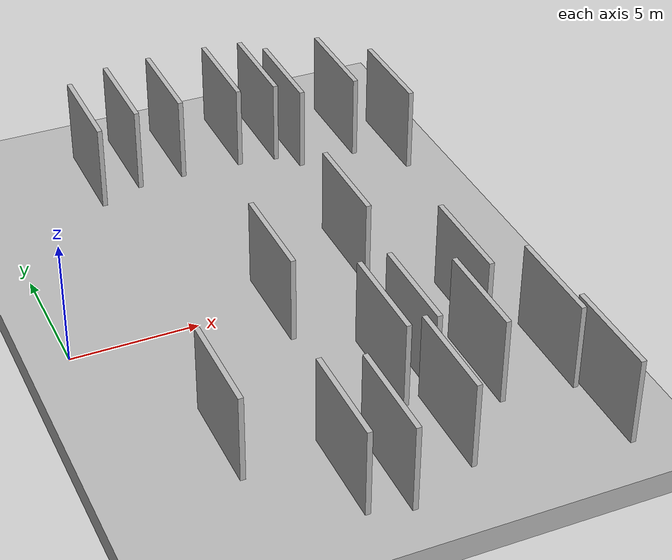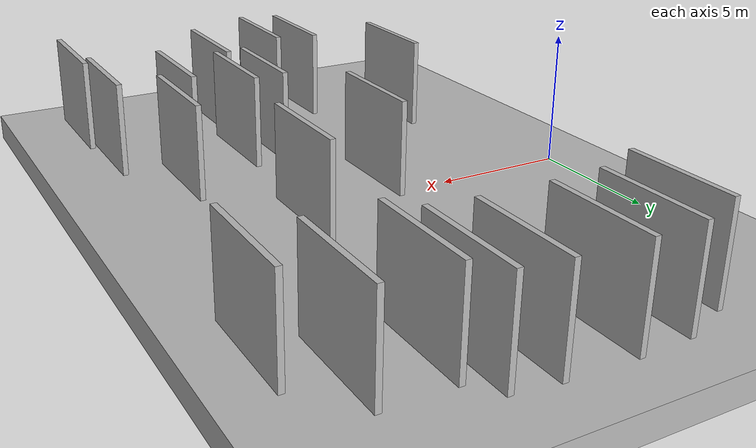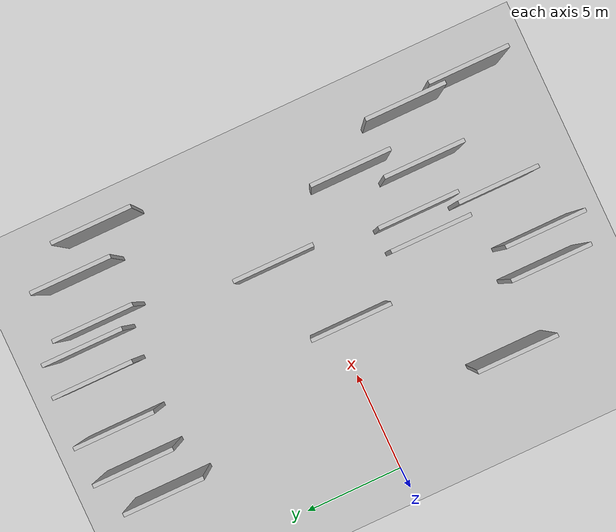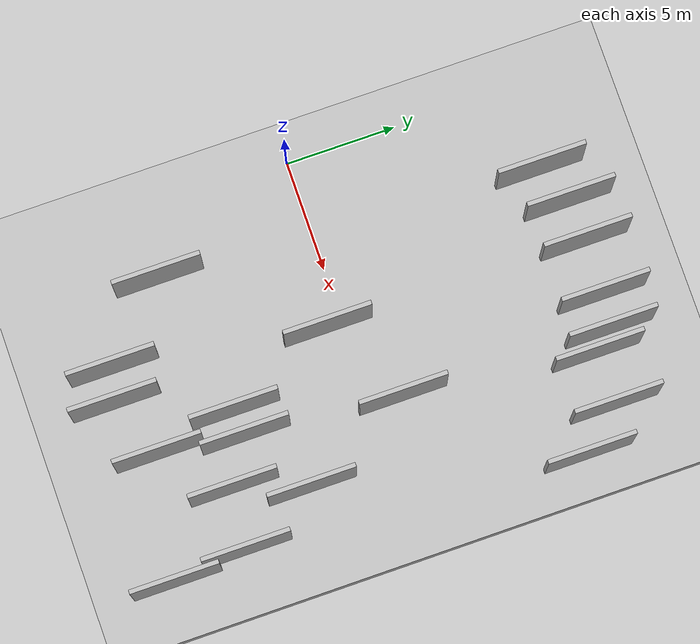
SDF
<?xml version="1.0" encoding="utf-8"?>

<sdf version="1.6">

   <world name="default">

      <gui fullscreen="0">

         <camera name="user_camera">

            <pose>-15 0 4.57585 0 0 0</pose>

            <view_controller>orbit</view_controller>

         </camera>

      </gui>

      <scene>

         <sky>

           <clouds>

             <speed>12</speed>

           </clouds>

         </sky>

         <ambient>0.4 0.4 0.4 1</ambient>

         <background>0.7 0.7 0.7 1</background>

         <shadows>1</shadows>

      </scene>

      <gravity>0 0 -9.8066</gravity>

      <magnetic_field>6e-06 2.3e-05 -4.2e-05</magnetic_field>

      <physics default="0" name="default_physics" type="ode">

         <ode>

            <solver>

               <type>quick</type>

               <iters>10</iters>

               <sor>1.0</sor>

               <use_dynamic_moi_rescaling>0</use_dynamic_moi_rescaling>

            </solver>

            <constraints>

               <cfm>0</cfm>

               <erp>0.2</erp>

               <contact_max_correcting_vel>100</contact_max_correcting_vel>

               <contact_surface_layer>0.001</contact_surface_layer>

            </constraints>

         </ode>

         <max_step_size>0.004</max_step_size>

         <real_time_factor>1</real_time_factor>

         <real_time_update_rate>250</real_time_update_rate>

      </physics>

      <light name="sun" type="directional">

         <cast_shadows>1</cast_shadows>

         <pose>0 0 10 0 0 0</pose>

         <diffuse>0.8 0.8 0.8 1</diffuse>

         <specular>0.2 0.2 0.2 1</specular>

         <attenuation>

            <range>1000</range>

            <constant>0.9</constant>

            <linear>0.01</linear>

            <quadratic>0.001</quadratic>

         </attenuation>

         <direction>-0.5 0.1 -0.9</direction>

      </light>

      <include>

         <name>ground_plane_1</name>

         <uri>model://HANNAS_ground_plane</uri>

         <pose>0 0 0  0 0 0</pose>

      </include>

      <include>

         <name>ground_plane_2</name>

         <uri>model://HANNAS_ground_plane</uri>

         <pose>100 0 0  0 0 0</pose>

      </include>

      <model name="HANNAS_wall_1">

         <static>1</static>

         <pose frame="">6.3063 -10.0664 0.0 0.000000 0.000000 1.570796</pose>

         <link name="link">

            <pose frame="">0 0 2.00 0 0 0</pose>

            <collision name="collision">

               <geometry>

                  <box>

                     <size>4.00 0.2 4.00</size>

                  </box>

               </geometry>

               <max_contacts>10</max_contacts>

               <surface>

                  <contact>

                     <ode/>

                  </contact>

                  <bounce/>

                  <friction>

                     <torsional>

                        <ode/>

                     </torsional>

                     <ode/>

                  </friction>

               </surface>

            </collision>

            <visual name="visual">

               <cast_shadows>0</cast_shadows>

               <geometry>

                  <box>

                     <size>4.00 0.2 4.00</size>

                  </box>

               </geometry>

               <material>

                  <script>

                     <uri>model://HANNAS_wall/materials/scripts</uri>

                     <uri>model://HANNAS_wall/materials/textures</uri>

                     <name>vrc/HANNAS_wall</name>

                  </script>

               </material>

            </visual>

            <self_collide>0</self_collide>

            <enable_wind>0</enable_wind>

            <kinematic>0</kinematic>

         </link>

      </model>

      <model name="HANNAS_wall_2">

         <static>1</static>

         <pose frame="">4.1061 10.2583 0.0 0.000000 0.000000 1.570796</pose>

         <link name="link">

            <pose frame="">0 0 2.00 0 0 0</pose>

            <collision name="collision">

               <geometry>

                  <box>

                     <size>4.00 0.2 4.00</size>

                  </box>

               </geometry>

               <max_contacts>10</max_contacts>

               <surface>

                  <contact>

                     <ode/>

                  </contact>

                  <bounce/>

                  <friction>

                     <torsional>

                        <ode/>

                     </torsional>

                     <ode/>

                  </friction>

               </surface>

            </collision>

            <visual name="visual">

               <cast_shadows>0</cast_shadows>

               <geometry>

                  <box>

                     <size>4.00 0.2 4.00</size>

                  </box>

               </geometry>

               <material>

                  <script>

                     <uri>model://HANNAS_wall/materials/scripts</uri>

                     <uri>model://HANNAS_wall/materials/textures</uri>

                     <name>vrc/HANNAS_wall</name>

                  </script>

               </material>

            </visual>

            <self_collide>0</self_collide>

            <enable_wind>0</enable_wind>

            <kinematic>0</kinematic>

         </link>

      </model>

      <model name="HANNAS_wall_3">

         <static>1</static>

         <pose frame="">5.8660 10.9579 0.0 0.000000 0.000000 1.570796</pose>

         <link name="link">

            <pose frame="">0 0 2.00 0 0 0</pose>

            <collision name="collision">

               <geometry>

                  <box>

                     <size>4.00 0.2 4.00</size>

                  </box>

               </geometry>

               <max_contacts>10</max_contacts>

               <surface>

                  <contact>

                     <ode/>

                  </contact>

                  <bounce/>

                  <friction>

                     <torsional>

                        <ode/>

                     </torsional>

                     <ode/>

                  </friction>

               </surface>

            </collision>

            <visual name="visual">

               <cast_shadows>0</cast_shadows>

               <geometry>

                  <box>

                     <size>4.00 0.2 4.00</size>

                  </box>

               </geometry>

               <material>

                  <script>

                     <uri>model://HANNAS_wall/materials/scripts</uri>

                     <uri>model://HANNAS_wall/materials/textures</uri>

                     <name>vrc/HANNAS_wall</name>

                  </script>

               </material>

            </visual>

            <self_collide>0</self_collide>

            <enable_wind>0</enable_wind>

            <kinematic>0</kinematic>

         </link>

      </model>

      <model name="HANNAS_wall_4">

         <static>1</static>

         <pose frame="">7.7564 11.0392 0.0 0.000000 0.000000 1.570796</pose>

         <link name="link">

            <pose frame="">0 0 2.00 0 0 0</pose>

            <collision name="collision">

               <geometry>

                  <box>

                     <size>4.00 0.2 4.00</size>

                  </box>

               </geometry>

               <max_contacts>10</max_contacts>

               <surface>

                  <contact>

                     <ode/>

                  </contact>

                  <bounce/>

                  <friction>

                     <torsional>

                        <ode/>

                     </torsional>

                     <ode/>

                  </friction>

               </surface>

            </collision>

            <visual name="visual">

               <cast_shadows>0</cast_shadows>

               <geometry>

                  <box>

                     <size>4.00 0.2 4.00</size>

                  </box>

               </geometry>

               <material>

                  <script>

                     <uri>model://HANNAS_wall/materials/scripts</uri>

                     <uri>model://HANNAS_wall/materials/textures</uri>

                     <name>vrc/HANNAS_wall</name>

                  </script>

               </material>

            </visual>

            <self_collide>0</self_collide>

            <enable_wind>0</enable_wind>

            <kinematic>0</kinematic>

         </link>

      </model>

      <model name="HANNAS_wall_5">

         <static>1</static>

         <pose frame="">7.8040 -10.4779 0.0 0.000000 0.000000 1.570796</pose>

         <link name="link">

            <pose frame="">0 0 2.00 0 0 0</pose>

            <collision name="collision">

               <geometry>

                  <box>

                     <size>4.00 0.2 4.00</size>

                  </box>

               </geometry>

               <max_contacts>10</max_contacts>

               <surface>

                  <contact>

                     <ode/>

                  </contact>

                  <bounce/>

                  <friction>

                     <torsional>

                        <ode/>

                     </torsional>

                     <ode/>

                  </friction>

               </surface>

            </collision>

            <visual name="visual">

               <cast_shadows>0</cast_shadows>

               <geometry>

                  <box>

                     <size>4.00 0.2 4.00</size>

                  </box>

               </geometry>

               <material>

                  <script>

                     <uri>model://HANNAS_wall/materials/scripts</uri>

                     <uri>model://HANNAS_wall/materials/textures</uri>

                     <name>vrc/HANNAS_wall</name>

                  </script>

               </material>

            </visual>

            <self_collide>0</self_collide>

            <enable_wind>0</enable_wind>

            <kinematic>0</kinematic>

         </link>

      </model>

      <model name="HANNAS_wall_6">

         <static>1</static>

         <pose frame="">11.5746 1.3347 0.0 0.000000 0.000000 1.570796</pose>

         <link name="link">

            <pose frame="">0 0 2.00 0 0 0</pose>

            <collision name="collision">

               <geometry>

                  <box>

                     <size>4.00 0.2 4.00</size>

                  </box>

               </geometry>

               <max_contacts>10</max_contacts>

               <surface>

                  <contact>

                     <ode/>

                  </contact>

                  <bounce/>

                  <friction>

                     <torsional>

                        <ode/>

                     </torsional>

                     <ode/>

                  </friction>

               </surface>

            </collision>

            <visual name="visual">

               <cast_shadows>0</cast_shadows>

               <geometry>

                  <box>

                     <size>4.00 0.2 4.00</size>

                  </box>

               </geometry>

               <material>

                  <script>

                     <uri>model://HANNAS_wall/materials/scripts</uri>

                     <uri>model://HANNAS_wall/materials/textures</uri>

                     <name>vrc/HANNAS_wall</name>

                  </script>

               </material>

            </visual>

            <self_collide>0</self_collide>

            <enable_wind>0</enable_wind>

            <kinematic>0</kinematic>

         </link>

      </model>

      <model name="HANNAS_wall_7">

         <static>1</static>

         <pose frame="">15.6903 -7.1706 0.0 0.000000 0.000000 1.570796</pose>

         <link name="link">

            <pose frame="">0 0 2.00 0 0 0</pose>

            <collision name="collision">

               <geometry>

                  <box>

                     <size>4.00 0.2 4.00</size>

                  </box>

               </geometry>

               <max_contacts>10</max_contacts>

               <surface>

                  <contact>

                     <ode/>

                  </contact>

                  <bounce/>

                  <friction>

                     <torsional>

                        <ode/>

                     </torsional>

                     <ode/>

                  </friction>

               </surface>

            </collision>

            <visual name="visual">

               <cast_shadows>0</cast_shadows>

               <geometry>

                  <box>

                     <size>4.00 0.2 4.00</size>

                  </box>

               </geometry>

               <material>

                  <script>

                     <uri>model://HANNAS_wall/materials/scripts</uri>

                     <uri>model://HANNAS_wall/materials/textures</uri>

                     <name>vrc/HANNAS_wall</name>

                  </script>

               </material>

            </visual>

            <self_collide>0</self_collide>

            <enable_wind>0</enable_wind>

            <kinematic>0</kinematic>

         </link>

      </model>

      <model name="HANNAS_wall_8">

         <static>1</static>

         <pose frame="">14.0277 -3.6547 0.0 0.000000 0.000000 1.570796</pose>

         <link name="link">

            <pose frame="">0 0 2.00 0 0 0</pose>

            <collision name="collision">

               <geometry>

                  <box>

                     <size>4.00 0.2 4.00</size>

                  </box>

               </geometry>

               <max_contacts>10</max_contacts>

               <surface>

                  <contact>

                     <ode/>

                  </contact>

                  <bounce/>

                  <friction>

                     <torsional>

                        <ode/>

                     </torsional>

                     <ode/>

                  </friction>

               </surface>

            </collision>

            <visual name="visual">

               <cast_shadows>0</cast_shadows>

               <geometry>

                  <box>

                     <size>4.00 0.2 4.00</size>

                  </box>

               </geometry>

               <material>

                  <script>

                     <uri>model://HANNAS_wall/materials/scripts</uri>

                     <uri>model://HANNAS_wall/materials/textures</uri>

                     <name>vrc/HANNAS_wall</name>

                  </script>

               </material>

            </visual>

            <self_collide>0</self_collide>

            <enable_wind>0</enable_wind>

            <kinematic>0</kinematic>

         </link>

      </model>

      <model name="HANNAS_wall_9">

         <static>1</static>

         <pose frame="">16.6101 8.0653 0.0 0.000000 0.000000 1.570796</pose>

         <link name="link">

            <pose frame="">0 0 2.00 0 0 0</pose>

            <collision name="collision">

               <geometry>

                  <box>

                     <size>4.00 0.2 4.00</size>

                  </box>

               </geometry>

               <max_contacts>10</max_contacts>

               <surface>

                  <contact>

                     <ode/>

                  </contact>

                  <bounce/>

                  <friction>

                     <torsional>

                        <ode/>

                     </torsional>

                     <ode/>

                  </friction>

               </surface>

            </collision>

            <visual name="visual">

               <cast_shadows>0</cast_shadows>

               <geometry>

                  <box>

                     <size>4.00 0.2 4.00</size>

                  </box>

               </geometry>

               <material>

                  <script>

                     <uri>model://HANNAS_wall/materials/scripts</uri>

                     <uri>model://HANNAS_wall/materials/textures</uri>

                     <name>vrc/HANNAS_wall</name>

                  </script>

               </material>

            </visual>

            <self_collide>0</self_collide>

            <enable_wind>0</enable_wind>

            <kinematic>0</kinematic>

         </link>

      </model>

      <model name="HANNAS_wall_10">

         <static>1</static>

         <pose frame="">12.9653 -6.8424 0.0 0.000000 0.000000 1.570796</pose>

         <link name="link">

            <pose frame="">0 0 2.00 0 0 0</pose>

            <collision name="collision">

               <geometry>

                  <box>

                     <size>4.00 0.2 4.00</size>

                  </box>

               </geometry>

               <max_contacts>10</max_contacts>

               <surface>

                  <contact>

                     <ode/>

                  </contact>

                  <bounce/>

                  <friction>

                     <torsional>

                        <ode/>

                     </torsional>

                     <ode/>

                  </friction>

               </surface>

            </collision>

            <visual name="visual">

               <cast_shadows>0</cast_shadows>

               <geometry>

                  <box>

                     <size>4.00 0.2 4.00</size>

                  </box>

               </geometry>

               <material>

                  <script>

                     <uri>model://HANNAS_wall/materials/scripts</uri>

                     <uri>model://HANNAS_wall/materials/textures</uri>

                     <name>vrc/HANNAS_wall</name>

                  </script>

               </material>

            </visual>

            <self_collide>0</self_collide>

            <enable_wind>0</enable_wind>

            <kinematic>0</kinematic>

         </link>

      </model>

      <model name="HANNAS_wall_11">

         <static>1</static>

         <pose frame="">3.2163 -6.9590 0.0 0.000000 0.000000 1.570796</pose>

         <link name="link">

            <pose frame="">0 0 2.00 0 0 0</pose>

            <collision name="collision">

               <geometry>

                  <box>

                     <size>4.00 0.2 4.00</size>

                  </box>

               </geometry>

               <max_contacts>10</max_contacts>

               <surface>

                  <contact>

                     <ode/>

                  </contact>

                  <bounce/>

                  <friction>

                     <torsional>

                        <ode/>

                     </torsional>

                     <ode/>

                  </friction>

               </surface>

            </collision>

            <visual name="visual">

               <cast_shadows>0</cast_shadows>

               <geometry>

                  <box>

                     <size>4.00 0.2 4.00</size>

                  </box>

               </geometry>

               <material>

                  <script>

                     <uri>model://HANNAS_wall/materials/scripts</uri>

                     <uri>model://HANNAS_wall/materials/textures</uri>

                     <name>vrc/HANNAS_wall</name>

                  </script>

               </material>

            </visual>

            <self_collide>0</self_collide>

            <enable_wind>0</enable_wind>

            <kinematic>0</kinematic>

         </link>

      </model>

      <model name="HANNAS_wall_12">

         <static>1</static>

         <pose frame="">10.5106 -9.3970 0.0 0.000000 0.000000 1.570796</pose>

         <link name="link">

            <pose frame="">0 0 2.00 0 0 0</pose>

            <collision name="collision">

               <geometry>

                  <box>

                     <size>4.00 0.2 4.00</size>

                  </box>

               </geometry>

               <max_contacts>10</max_contacts>

               <surface>

                  <contact>

                     <ode/>

                  </contact>

                  <bounce/>

                  <friction>

                     <torsional>

                        <ode/>

                     </torsional>

                     <ode/>

                  </friction>

               </surface>

            </collision>

            <visual name="visual">

               <cast_shadows>0</cast_shadows>

               <geometry>

                  <box>

                     <size>4.00 0.2 4.00</size>

                  </box>

               </geometry>

               <material>

                  <script>

                     <uri>model://HANNAS_wall/materials/scripts</uri>

                     <uri>model://HANNAS_wall/materials/textures</uri>

                     <name>vrc/HANNAS_wall</name>

                  </script>

               </material>

            </visual>

            <self_collide>0</self_collide>

            <enable_wind>0</enable_wind>

            <kinematic>0</kinematic>

         </link>

      </model>

      <model name="HANNAS_wall_13">

         <static>1</static>

         <pose frame="">14.9527 9.8604 0.0 0.000000 0.000000 1.570796</pose>

         <link name="link">

            <pose frame="">0 0 2.00 0 0 0</pose>

            <collision name="collision">

               <geometry>

                  <box>

                     <size>4.00 0.2 4.00</size>

                  </box>

               </geometry>

               <max_contacts>10</max_contacts>

               <surface>

                  <contact>

                     <ode/>

                  </contact>

                  <bounce/>

                  <friction>

                     <torsional>

                        <ode/>

                     </torsional>

                     <ode/>

                  </friction>

               </surface>

            </collision>

            <visual name="visual">

               <cast_shadows>0</cast_shadows>

               <geometry>

                  <box>

                     <size>4.00 0.2 4.00</size>

                  </box>

               </geometry>

               <material>

                  <script>

                     <uri>model://HANNAS_wall/materials/scripts</uri>

                     <uri>model://HANNAS_wall/materials/textures</uri>

                     <name>vrc/HANNAS_wall</name>

                  </script>

               </material>

            </visual>

            <self_collide>0</self_collide>

            <enable_wind>0</enable_wind>

            <kinematic>0</kinematic>

         </link>

      </model>

      <model name="HANNAS_wall_14">

         <static>1</static>

         <pose frame="">7.6722 -0.7406 0.0 0.000000 0.000000 1.570796</pose>

         <link name="link">

            <pose frame="">0 0 2.00 0 0 0</pose>

            <collision name="collision">

               <geometry>

                  <box>

                     <size>4.00 0.2 4.00</size>

                  </box>

               </geometry>

               <max_contacts>10</max_contacts>

               <surface>

                  <contact>

                     <ode/>

                  </contact>

                  <bounce/>

                  <friction>

                     <torsional>

                        <ode/>

                     </torsional>

                     <ode/>

                  </friction>

               </surface>

            </collision>

            <visual name="visual">

               <cast_shadows>0</cast_shadows>

               <geometry>

                  <box>

                     <size>4.00 0.2 4.00</size>

                  </box>

               </geometry>

               <material>

                  <script>

                     <uri>model://HANNAS_wall/materials/scripts</uri>

                     <uri>model://HANNAS_wall/materials/textures</uri>

                     <name>vrc/HANNAS_wall</name>

                  </script>

               </material>

            </visual>

            <self_collide>0</self_collide>

            <enable_wind>0</enable_wind>

            <kinematic>0</kinematic>

         </link>

      </model>

      <model name="HANNAS_wall_15">

         <static>1</static>

         <pose frame="">9.7931 -5.7080 0.0 0.000000 0.000000 1.570796</pose>

         <link name="link">

            <pose frame="">0 0 2.00 0 0 0</pose>

            <collision name="collision">

               <geometry>

                  <box>

                     <size>4.00 0.2 4.00</size>

                  </box>

               </geometry>

               <max_contacts>10</max_contacts>

               <surface>

                  <contact>

                     <ode/>

                  </contact>

                  <bounce/>

                  <friction>

                     <torsional>

                        <ode/>

                     </torsional>

                     <ode/>

                  </friction>

               </surface>

            </collision>

            <visual name="visual">

               <cast_shadows>0</cast_shadows>

               <geometry>

                  <box>

                     <size>4.00 0.2 4.00</size>

                  </box>

               </geometry>

               <material>

                  <script>

                     <uri>model://HANNAS_wall/materials/scripts</uri>

                     <uri>model://HANNAS_wall/materials/textures</uri>

                     <name>vrc/HANNAS_wall</name>

                  </script>

               </material>

            </visual>

            <self_collide>0</self_collide>

            <enable_wind>0</enable_wind>

            <kinematic>0</kinematic>

         </link>

      </model>

      <model name="HANNAS_wall_16">

         <static>1</static>

         <pose frame="">12.5636 9.8685 0.0 0.000000 0.000000 1.570796</pose>

         <link name="link">

            <pose frame="">0 0 2.00 0 0 0</pose>

            <collision name="collision">

               <geometry>

                  <box>

                     <size>4.00 0.2 4.00</size>

                  </box>

               </geometry>

               <max_contacts>10</max_contacts>

               <surface>

                  <contact>

                     <ode/>

                  </contact>

                  <bounce/>

                  <friction>

                     <torsional>

                        <ode/>

                     </torsional>

                     <ode/>

                  </friction>

               </surface>

            </collision>

            <visual name="visual">

               <cast_shadows>0</cast_shadows>

               <geometry>

                  <box>

                     <size>4.00 0.2 4.00</size>

                  </box>

               </geometry>

               <material>

                  <script>

                     <uri>model://HANNAS_wall/materials/scripts</uri>

                     <uri>model://HANNAS_wall/materials/textures</uri>

                     <name>vrc/HANNAS_wall</name>

                  </script>

               </material>

            </visual>

            <self_collide>0</self_collide>

            <enable_wind>0</enable_wind>

            <kinematic>0</kinematic>

         </link>

      </model>

      <model name="HANNAS_wall_17">

         <static>1</static>

         <pose frame="">10.9870 -5.6333 0.0 0.000000 0.000000 1.570796</pose>

         <link name="link">

            <pose frame="">0 0 2.00 0 0 0</pose>

            <collision name="collision">

               <geometry>

                  <box>

                     <size>4.00 0.2 4.00</size>

                  </box>

               </geometry>

               <max_contacts>10</max_contacts>

               <surface>

                  <contact>

                     <ode/>

                  </contact>

                  <bounce/>

                  <friction>

                     <torsional>

                        <ode/>

                     </torsional>

                     <ode/>

                  </friction>

               </surface>

            </collision>

            <visual name="visual">

               <cast_shadows>0</cast_shadows>

               <geometry>

                  <box>

                     <size>4.00 0.2 4.00</size>

                  </box>

               </geometry>

               <material>

                  <script>

                     <uri>model://HANNAS_wall/materials/scripts</uri>

                     <uri>model://HANNAS_wall/materials/textures</uri>

                     <name>vrc/HANNAS_wall</name>

                  </script>

               </material>

            </visual>

            <self_collide>0</self_collide>

            <enable_wind>0</enable_wind>

            <kinematic>0</kinematic>

         </link>

      </model>

      <model name="HANNAS_wall_18">

         <static>1</static>

         <pose frame="">15.9986 -10.4581 0.0 0.000000 0.000000 1.570796</pose>

         <link name="link">

            <pose frame="">0 0 2.00 0 0 0</pose>

            <collision name="collision">

               <geometry>

                  <box>

                     <size>4.00 0.2 4.00</size>

                  </box>

               </geometry>

               <max_contacts>10</max_contacts>

               <surface>

                  <contact>

                     <ode/>

                  </contact>

                  <bounce/>

                  <friction>

                     <torsional>

                        <ode/>

                     </torsional>

                     <ode/>

                  </friction>

               </surface>

            </collision>

            <visual name="visual">

               <cast_shadows>0</cast_shadows>

               <geometry>

                  <box>

                     <size>4.00 0.2 4.00</size>

                  </box>

               </geometry>

               <material>

                  <script>

                     <uri>model://HANNAS_wall/materials/scripts</uri>

                     <uri>model://HANNAS_wall/materials/textures</uri>

                     <name>vrc/HANNAS_wall</name>

                  </script>

               </material>

            </visual>

            <self_collide>0</self_collide>

            <enable_wind>0</enable_wind>

            <kinematic>0</kinematic>

         </link>

      </model>

      <model name="HANNAS_wall_19">

         <static>1</static>

         <pose frame="">11.7682 10.7587 0.0 0.000000 0.000000 1.570796</pose>

         <link name="link">

            <pose frame="">0 0 2.00 0 0 0</pose>

            <collision name="collision">

               <geometry>

                  <box>

                     <size>4.00 0.2 4.00</size>

                  </box>

               </geometry>

               <max_contacts>10</max_contacts>

               <surface>

                  <contact>

                     <ode/>

                  </contact>

                  <bounce/>

                  <friction>

                     <torsional>

                        <ode/>

                     </torsional>

                     <ode/>

                  </friction>

               </surface>

            </collision>

            <visual name="visual">

               <cast_shadows>0</cast_shadows>

               <geometry>

                  <box>

                     <size>4.00 0.2 4.00</size>

                  </box>

               </geometry>

               <material>

                  <script>

                     <uri>model://HANNAS_wall/materials/scripts</uri>

                     <uri>model://HANNAS_wall/materials/textures</uri>

                     <name>vrc/HANNAS_wall</name>

                  </script>

               </material>

            </visual>

            <self_collide>0</self_collide>

            <enable_wind>0</enable_wind>

            <kinematic>0</kinematic>

         </link>

      </model>

      <model name="HANNAS_wall_20">

         <static>1</static>

         <pose frame="">10.2295 10.9609 0.0 0.000000 0.000000 1.570796</pose>

         <link name="link">

            <pose frame="">0 0 2.00 0 0 0</pose>

            <collision name="collision">

               <geometry>

                  <box>

                     <size>4.00 0.2 4.00</size>

                  </box>

               </geometry>

               <max_contacts>10</max_contacts>

               <surface>

                  <contact>

                     <ode/>

                  </contact>

                  <bounce/>

                  <friction>

                     <torsional>

                        <ode/>

                     </torsional>

                     <ode/>

                  </friction>

               </surface>

            </collision>

            <visual name="visual">

               <cast_shadows>0</cast_shadows>

               <geometry>

                  <box>

                     <size>4.00 0.2 4.00</size>

                  </box>

               </geometry>

               <material>

                  <script>

                     <uri>model://HANNAS_wall/materials/scripts</uri>

                     <uri>model://HANNAS_wall/materials/textures</uri>

                     <name>vrc/HANNAS_wall</name>

                  </script>

               </material>

            </visual>

            <self_collide>0</self_collide>

            <enable_wind>0</enable_wind>

            <kinematic>0</kinematic>

         </link>

      </model>

   </world>

</sdf>

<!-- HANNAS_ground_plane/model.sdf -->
<sdf version="1.4">
<model name="HANNAS_ground_plane">
  <static>true</static>
    <link name="link">
      <collision name="collision">
        <geometry>
          <plane>
            <normal>0 0 1</normal>
            <size>1000 1000</size>
          </plane>
        </geometry>
        <surface>
          <friction>
            <ode>
              <mu>100</mu>
              <mu2>50</mu2>
            </ode>
          </friction>
        </surface>
      </collision>
      <visual name="visual">
        <cast_shadows>false</cast_shadows>
        <geometry>
          <plane>
            <normal>0 0 1</normal>
            <size>1000 1000</size>
          </plane>
        </geometry>
        <material>
          <script>
            <uri>model://HANNAS_ground_plane/materials/scripts/HANNAS_ground_plane.material</uri>
	    <uri>model://HANNAS_ground_plane/materials/textures</uri>
            <name>HANNASGroundPlane/Image</name>
          </script>
        </material>
      </visual>
    </link>
  </model>
</sdf>
